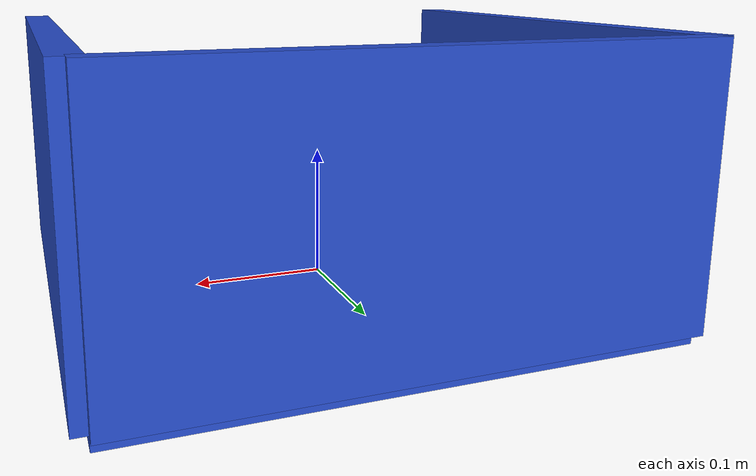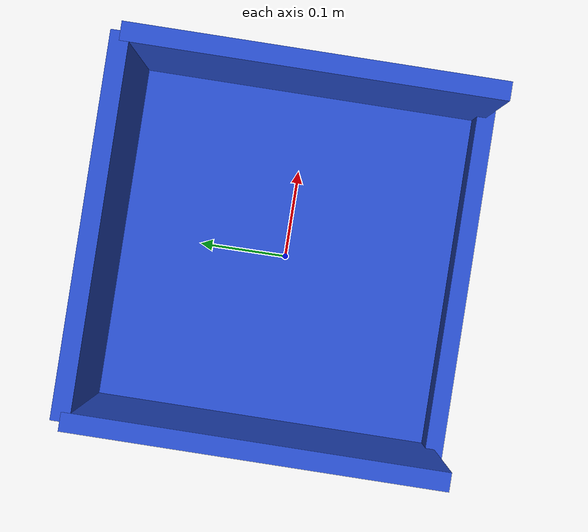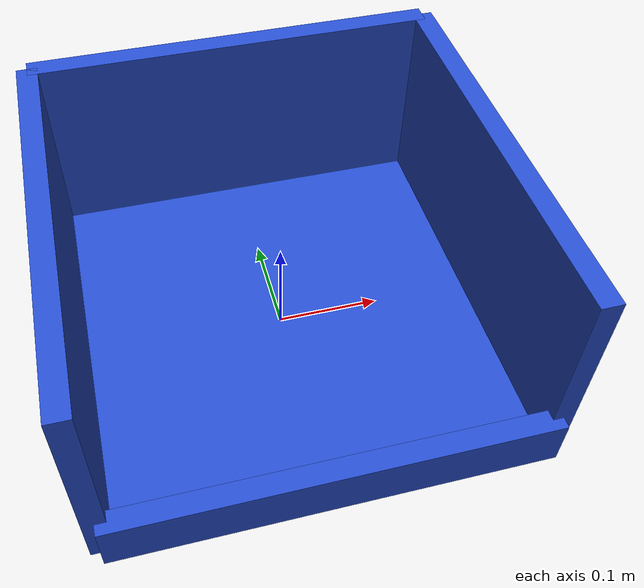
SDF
<?xml version='1.0'?>
<sdf version='1.4'>
    <model name='Bin'>
        <static>true</static>
        <link name='bottom'>
            <collision name="collision_bottom">
                <geometry><box><size>0.4 0.4 0.02</size></box></geometry>
            </collision>
            <collision name="collision_left">
                <pose>-0.2 0 0.1 0 0 0</pose>
                <geometry><box><size>0.02 0.4 0.2</size></box></geometry>
            </collision>
            <collision name="collision_right">
                <pose>0.2 0 0.1 0 0 0</pose>
                <geometry><box><size>0.02 0.4 0.2</size></box></geometry>
            </collision>
            <collision name="collision_front">
                <pose> 0 -0.2 0.025 0 0 0</pose>
                <geometry><box><size>0.4 0.02 0.05</size></box></geometry>
            </collision>
            <collision name="collision_back">
                <pose>0 0.2 0.1 0 0 0</pose>
                <geometry><box><size>0.4 0.02 0.2</size></box></geometry>
            </collision>
            <visual name="visual_bottom">
                <geometry><box><size>0.4 0.4 0.02</size></box></geometry>
                <material><script><name>Gazebo/Blue</name></script></material>
            </visual>
            <visual name="visual_left">
                <pose>-0.2 0 0.1 0 0 0</pose>
                <geometry><box><size>0.02 0.4 0.2</size></box></geometry>
                <material><script><name>Gazebo/Blue</name></script></material>
            </visual>
            <visual name="visual_right">
                <pose>0.2 0 0.1 0 0 0</pose>
                <geometry><box><size>0.02 0.4 0.2</size></box></geometry>
                <material><script><name>Gazebo/Blue</name></script></material>
            </visual>
            <visual name="visual_front">
                <pose> 0 -0.2 0.025 0 0 0</pose>
                <geometry><box><size>0.4 0.02 0.05</size></box></geometry>
                <material><script><name>Gazebo/Blue</name></script></material>
            </visual>
            <visual name="visual_back">
                <pose>0 0.2 0.1 0 0 0</pose>
                <geometry><box><size>0.4 0.02 0.2</size></box></geometry>
                <material><script><name>Gazebo/Blue</name></script></material>
            </visual>
        </link>
    </model>
</sdf>
